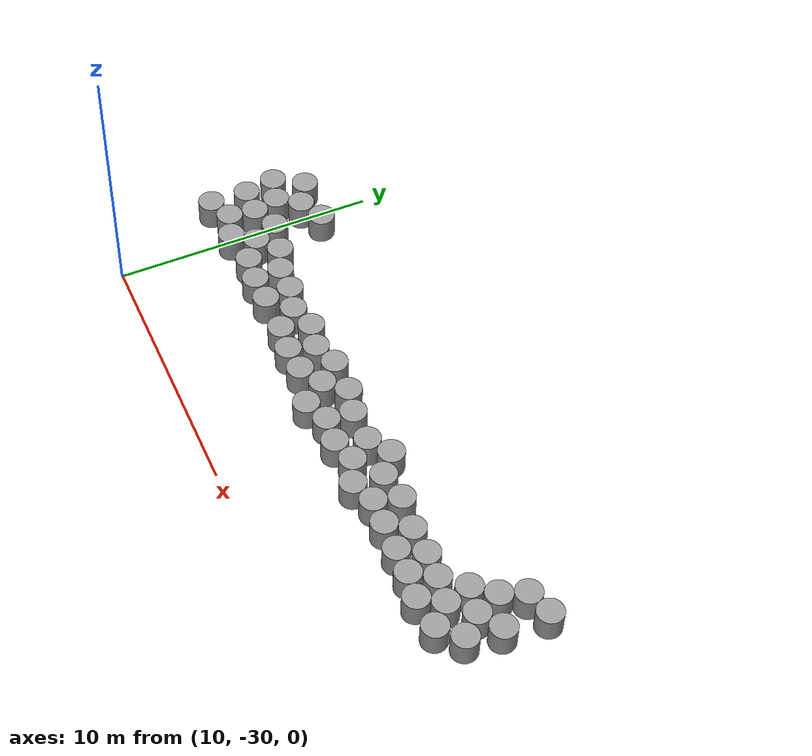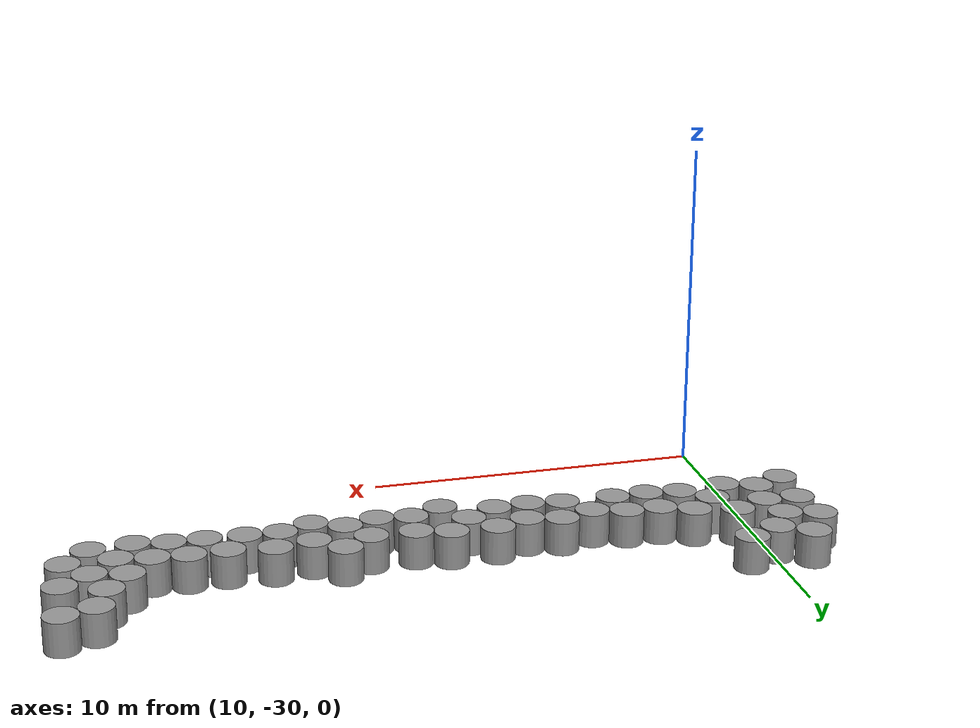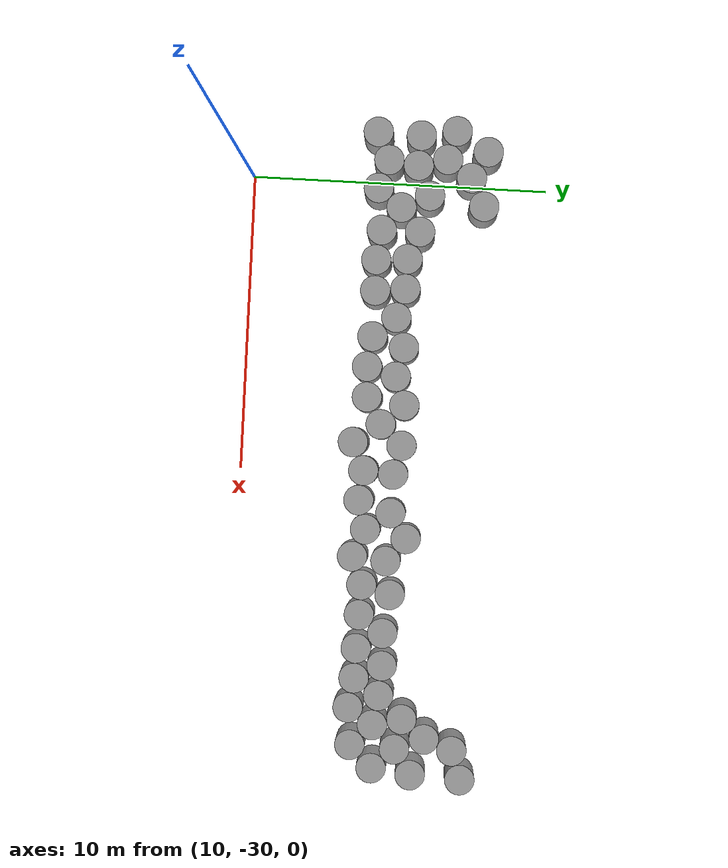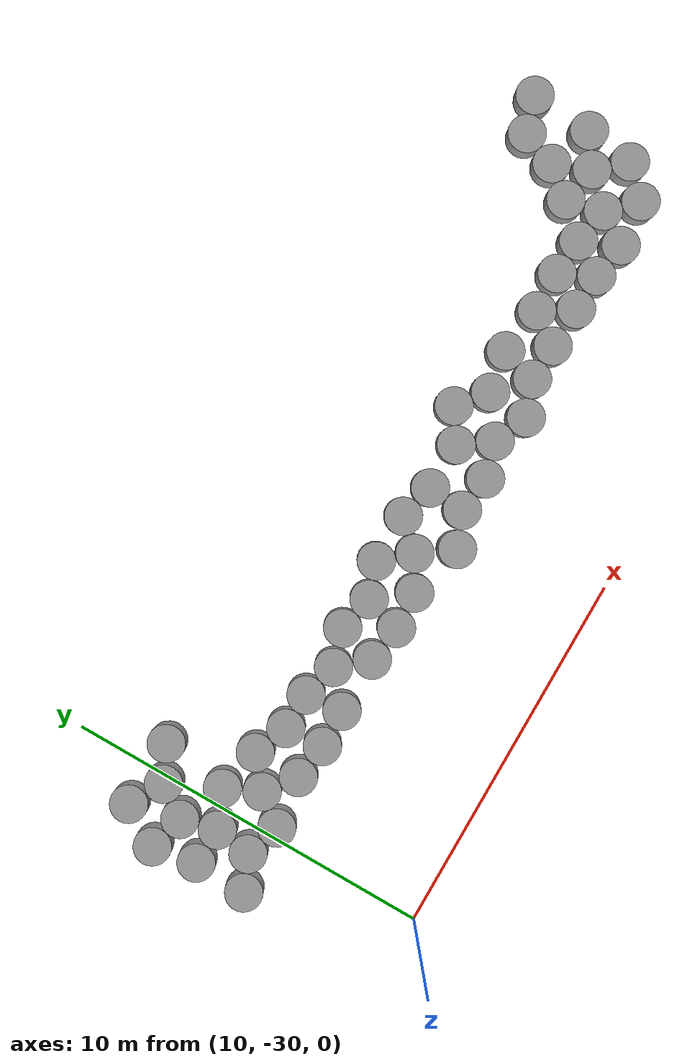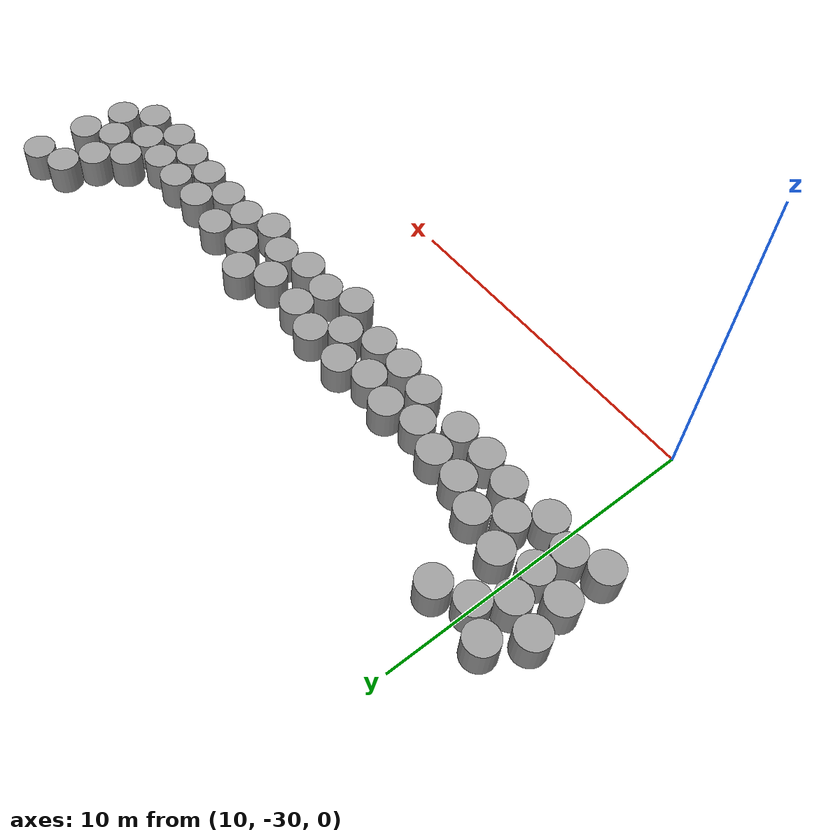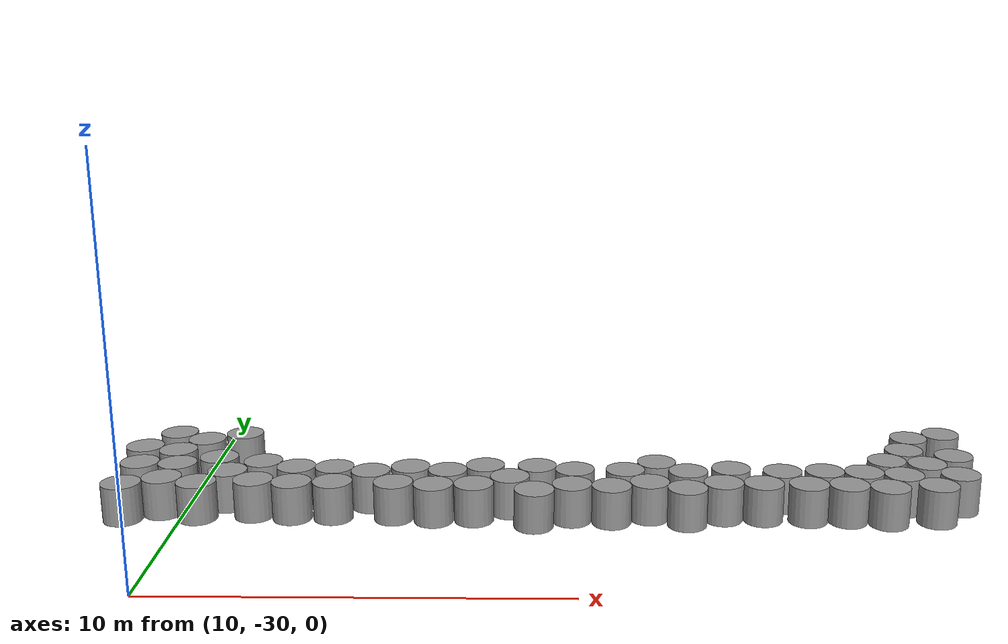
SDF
<sdf version="1.4">
 <world name="default">
  <model name="ground">
   <link name="body">
    <collision name="geom">
     <geometry><plane><normal>0 0 1</normal><size>1 1</size></plane></geometry>
     <surface><friction><ode><mu>100</mu><mu2>50</mu2></ode></friction></surface>
    </collision>
   </link>
   <static>1</static>
  </model>
  <model name="unit_cylinder">
   <pose>26.8018 -25.697 0.499995 -2e-06 1e-06 0.040756</pose>
   <link name="link">
    <inertial>
     <mass>1</mass>
     <inertia><ixx>0.145833</ixx><ixy>0</ixy><ixz>0</ixz><iyy>0.145833</iyy><iyz>0</iyz><izz>0.125</izz></inertia>
    </inertial>
    <collision name="collision">
     <geometry><cylinder><radius>0.5</radius><length>1</length></cylinder></geometry>
    </collision>
    <visual name="visual">
     <geometry><cylinder><radius>0.5</radius><length>1</length></cylinder></geometry>
     <material>
      <script><name>Gazebo/Grey</name><uri>file://media/materials/scripts/gazebo.material</uri></script>
     </material>
    </visual>
   </link>
  </model>
  <model name="unit_cylinder_clone">
   <pose>27.7903 -25.8482 0.499995 -2e-06 2e-06 0.239846</pose>
   <link name="link">
    <inertial>
     <mass>1</mass>
     <inertia><ixx>0.145833</ixx><ixy>0</ixy><ixz>0</ixz><iyy>0.145833</iyy><iyz>0</iyz><izz>0.125</izz></inertia>
    </inertial>
    <collision name="collision">
     <geometry><cylinder><radius>0.5</radius><length>1</length></cylinder></geometry>
    </collision>
    <visual name="visual">
     <geometry><cylinder><radius>0.5</radius><length>1</length></cylinder></geometry>
     <material>
      <script><name>Gazebo/Grey</name><uri>file://media/materials/scripts/gazebo.material</uri></script>
     </material>
    </visual>
   </link>
  </model>
  <model name="unit_cylinder_clone_0">
   <pose>29.0276 -25.7266 0.499998 3e-06 -3e-06 0.070741</pose>
   <link name="link">
    <inertial>
     <mass>1</mass>
     <inertia><ixx>0.145833</ixx><ixy>0</ixy><ixz>0</ixz><iyy>0.145833</iyy><iyz>0</iyz><izz>0.125</izz></inertia>
    </inertial>
    <collision name="collision">
     <geometry><cylinder><radius>0.5</radius><length>1</length></cylinder></geometry>
    </collision>
    <visual name="visual">
     <geometry><cylinder><radius>0.5</radius><length>1</length></cylinder></geometry>
     <material>
      <script><name>Gazebo/Grey</name><uri>file://media/materials/scripts/gazebo.material</uri></script>
     </material>
    </visual>
   </link>
  </model>
  <model name="unit_cylinder_clone_1">
   <pose>29.7721 -24.9783 0.499998 3e-06 -3e-06 0.079465</pose>
   <link name="link">
    <inertial>
     <mass>1</mass>
     <inertia><ixx>0.145833</ixx><ixy>0</ixy><ixz>0</ixz><iyy>0.145833</iyy><iyz>0</iyz><izz>0.125</izz></inertia>
    </inertial>
    <collision name="collision">
     <geometry><cylinder><radius>0.5</radius><length>1</length></cylinder></geometry>
    </collision>
    <visual name="visual">
     <geometry><cylinder><radius>0.5</radius><length>1</length></cylinder></geometry>
     <material>
      <script><name>Gazebo/Grey</name><uri>file://media/materials/scripts/gazebo.material</uri></script>
     </material>
    </visual>
   </link>
  </model>
  <model name="unit_cylinder_clone_2">
   <pose>29.9412 -23.6675 0.499996 -2e-06 -2e-06 -0.015943</pose>
   <link name="link">
    <inertial>
     <mass>1</mass>
     <inertia><ixx>0.145833</ixx><ixy>0</ixy><ixz>0</ixz><iyy>0.145833</iyy><iyz>0</iyz><izz>0.125</izz></inertia>
    </inertial>
    <collision name="collision">
     <geometry><cylinder><radius>0.5</radius><length>1</length></cylinder></geometry>
    </collision>
    <visual name="visual">
     <geometry><cylinder><radius>0.5</radius><length>1</length></cylinder></geometry>
     <material>
      <script><name>Gazebo/Grey</name><uri>file://media/materials/scripts/gazebo.material</uri></script>
     </material>
    </visual>
   </link>
  </model>
  <model name="unit_cylinder_clone_3">
   <pose>29.0754 -22.3193 0.499995 -3e-06 2e-06 -0.026891</pose>
   <link name="link">
    <inertial>
     <mass>1</mass>
     <inertia><ixx>0.145833</ixx><ixy>0</ixy><ixz>0</ixz><iyy>0.145833</iyy><iyz>0</iyz><izz>0.125</izz></inertia>
    </inertial>
    <collision name="collision">
     <geometry><cylinder><radius>0.5</radius><length>1</length></cylinder></geometry>
    </collision>
    <visual name="visual">
     <geometry><cylinder><radius>0.5</radius><length>1</length></cylinder></geometry>
     <material>
      <script><name>Gazebo/Grey</name><uri>file://media/materials/scripts/gazebo.material</uri></script>
     </material>
    </visual>
   </link>
  </model>
  <model name="unit_cylinder_clone_4">
   <pose>30.0254 -22.0038 0.499991 1e-06 1e-06 0.048586</pose>
   <link name="link">
    <inertial>
     <mass>1</mass>
     <inertia><ixx>0.145833</ixx><ixy>0</ixy><ixz>0</ixz><iyy>0.145833</iyy><iyz>0</iyz><izz>0.125</izz></inertia>
    </inertial>
    <collision name="collision">
     <geometry><cylinder><radius>0.5</radius><length>1</length></cylinder></geometry>
    </collision>
    <visual name="visual">
     <geometry><cylinder><radius>0.5</radius><length>1</length></cylinder></geometry>
     <material>
      <script><name>Gazebo/Grey</name><uri>file://media/materials/scripts/gazebo.material</uri></script>
     </material>
    </visual>
   </link>
  </model>
  <model name="unit_cylinder_clone_38">
   <pose>25.8021 -25.673 0.499991 1e-06 1e-06 -0.062745</pose>
   <link name="link">
    <inertial>
     <mass>1</mass>
     <inertia><ixx>0.145833</ixx><ixy>0</ixy><ixz>0</ixz><iyy>0.145833</iyy><iyz>0</iyz><izz>0.125</izz></inertia>
    </inertial>
    <collision name="collision">
     <geometry><cylinder><radius>0.5</radius><length>1</length></cylinder></geometry>
    </collision>
    <visual name="visual">
     <geometry><cylinder><radius>0.5</radius><length>1</length></cylinder></geometry>
     <material>
      <script><name>Gazebo/Grey</name><uri>file://media/materials/scripts/gazebo.material</uri></script>
     </material>
    </visual>
   </link>
  </model>
  <model name="unit_cylinder_clone_39">
   <pose>24.6782 -25.6293 0.5 -1e-06 -1e-06 0.085528</pose>
   <link name="link">
    <inertial>
     <mass>1</mass>
     <inertia><ixx>0.145833</ixx><ixy>0</ixy><ixz>0</ixz><iyy>0.145833</iyy><iyz>0</iyz><izz>0.125</izz></inertia>
    </inertial>
    <collision name="collision">
     <geometry><cylinder><radius>0.5</radius><length>1</length></cylinder></geometry>
    </collision>
    <visual name="visual">
     <geometry><cylinder><radius>0.5</radius><length>1</length></cylinder></geometry>
     <material>
      <script><name>Gazebo/Grey</name><uri>file://media/materials/scripts/gazebo.material</uri></script>
     </material>
    </visual>
   </link>
  </model>
  <model name="unit_cylinder_clone_40">
   <pose>23.677 -25.5955 0.499992 -3e-06 -2e-06 0.112481</pose>
   <link name="link">
    <inertial>
     <mass>1</mass>
     <inertia><ixx>0.145833</ixx><ixy>0</ixy><ixz>0</ixz><iyy>0.145833</iyy><iyz>0</iyz><izz>0.125</izz></inertia>
    </inertial>
    <collision name="collision">
     <geometry><cylinder><radius>0.5</radius><length>1</length></cylinder></geometry>
    </collision>
    <visual name="visual">
     <geometry><cylinder><radius>0.5</radius><length>1</length></cylinder></geometry>
     <material>
      <script><name>Gazebo/Grey</name><uri>file://media/materials/scripts/gazebo.material</uri></script>
     </material>
    </visual>
   </link>
  </model>
  <model name="unit_cylinder_clone_41">
   <pose>21.8206 -25.5633 0.499996 -2e-06 -2e-06 -0.178196</pose>
   <link name="link">
    <inertial>
     <mass>1</mass>
     <inertia><ixx>0.145833</ixx><ixy>0</ixy><ixz>0</ixz><iyy>0.145833</iyy><iyz>0</iyz><izz>0.125</izz></inertia>
    </inertial>
    <collision name="collision">
     <geometry><cylinder><radius>0.5</radius><length>1</length></cylinder></geometry>
    </collision>
    <visual name="visual">
     <geometry><cylinder><radius>0.5</radius><length>1</length></cylinder></geometry>
     <material>
      <script><name>Gazebo/Grey</name><uri>file://media/materials/scripts/gazebo.material</uri></script>
     </material>
    </visual>
   </link>
  </model>
  <model name="unit_cylinder_clone_42">
   <pose>20.8579 -25.834 0.5 0 0 -0.299492</pose>
   <link name="link">
    <inertial>
     <mass>1</mass>
     <inertia><ixx>0.145833</ixx><ixy>0</ixy><ixz>0</ixz><iyy>0.145833</iyy><iyz>0</iyz><izz>0.125</izz></inertia>
    </inertial>
    <collision name="collision">
     <geometry><cylinder><radius>0.5</radius><length>1</length></cylinder></geometry>
    </collision>
    <visual name="visual">
     <geometry><cylinder><radius>0.5</radius><length>1</length></cylinder></geometry>
     <material>
      <script><name>Gazebo/Grey</name><uri>file://media/materials/scripts/gazebo.material</uri></script>
     </material>
    </visual>
   </link>
  </model>
  <model name="unit_cylinder_clone_43">
   <pose>18.9197 -26.1093 0.51184 0.009366 -0.022071 2.09487</pose>
   <link name="link">
    <inertial>
     <mass>1</mass>
     <inertia><ixx>0.145833</ixx><ixy>0</ixy><ixz>0</ixz><iyy>0.145833</iyy><iyz>0</iyz><izz>0.125</izz></inertia>
    </inertial>
    <collision name="collision">
     <geometry><cylinder><radius>0.5</radius><length>1</length></cylinder></geometry>
    </collision>
    <visual name="visual">
     <geometry><cylinder><radius>0.5</radius><length>1</length></cylinder></geometry>
     <material>
      <script><name>Gazebo/Grey</name><uri>file://media/materials/scripts/gazebo.material</uri></script>
     </material>
    </visual>
   </link>
  </model>
  <model name="unit_cylinder_clone_44">
   <pose>17.4055 -25.7255 0.499998 4e-06 4e-06 0.056821</pose>
   <link name="link">
    <inertial>
     <mass>1</mass>
     <inertia><ixx>0.145833</ixx><ixy>0</ixy><ixz>0</ixz><iyy>0.145833</iyy><iyz>0</iyz><izz>0.125</izz></inertia>
    </inertial>
    <collision name="collision">
     <geometry><cylinder><radius>0.5</radius><length>1</length></cylinder></geometry>
    </collision>
    <visual name="visual">
     <geometry><cylinder><radius>0.5</radius><length>1</length></cylinder></geometry>
     <material>
      <script><name>Gazebo/Grey</name><uri>file://media/materials/scripts/gazebo.material</uri></script>
     </material>
    </visual>
   </link>
  </model>
  <model name="unit_cylinder_clone_45">
   <pose>15.3758 -25.6431 0.5 0 0 -0.057301</pose>
   <link name="link">
    <inertial>
     <mass>1</mass>
     <inertia><ixx>0.145833</ixx><ixy>0</ixy><ixz>0</ixz><iyy>0.145833</iyy><iyz>0</iyz><izz>0.125</izz></inertia>
    </inertial>
    <collision name="collision">
     <geometry><cylinder><radius>0.5</radius><length>1</length></cylinder></geometry>
    </collision>
    <visual name="visual">
     <geometry><cylinder><radius>0.5</radius><length>1</length></cylinder></geometry>
     <material>
      <script><name>Gazebo/Grey</name><uri>file://media/materials/scripts/gazebo.material</uri></script>
     </material>
    </visual>
   </link>
  </model>
  <model name="unit_cylinder_clone_46">
   <pose>13.8434 -25.6271 0.499994 2e-06 2e-06 0.045063</pose>
   <link name="link">
    <inertial>
     <mass>1</mass>
     <inertia><ixx>0.145833</ixx><ixy>0</ixy><ixz>0</ixz><iyy>0.145833</iyy><iyz>0</iyz><izz>0.125</izz></inertia>
    </inertial>
    <collision name="collision">
     <geometry><cylinder><radius>0.5</radius><length>1</length></cylinder></geometry>
    </collision>
    <visual name="visual">
     <geometry><cylinder><radius>0.5</radius><length>1</length></cylinder></geometry>
     <material>
      <script><name>Gazebo/Grey</name><uri>file://media/materials/scripts/gazebo.material</uri></script>
     </material>
    </visual>
   </link>
  </model>
  <model name="unit_cylinder_clone_47">
   <pose>11.8144 -25.5099 0.5 0 0 -0.049116</pose>
   <link name="link">
    <inertial>
     <mass>1</mass>
     <inertia><ixx>0.145833</ixx><ixy>0</ixy><ixz>0</ixz><iyy>0.145833</iyy><iyz>0</iyz><izz>0.125</izz></inertia>
    </inertial>
    <collision name="collision">
     <geometry><cylinder><radius>0.5</radius><length>1</length></cylinder></geometry>
    </collision>
    <visual name="visual">
     <geometry><cylinder><radius>0.5</radius><length>1</length></cylinder></geometry>
     <material>
      <script><name>Gazebo/Grey</name><uri>file://media/materials/scripts/gazebo.material</uri></script>
     </material>
    </visual>
   </link>
  </model>
  <model name="unit_cylinder_clone_49">
   <pose>8.60095 -24.3339 0.499999 2e-06 2e-06 0.106613</pose>
   <link name="link">
    <inertial>
     <mass>1</mass>
     <inertia><ixx>0.145833</ixx><ixy>0</ixy><ixz>0</ixz><iyy>0.145833</iyy><iyz>0</iyz><izz>0.125</izz></inertia>
    </inertial>
    <collision name="collision">
     <geometry><cylinder><radius>0.5</radius><length>1</length></cylinder></geometry>
    </collision>
    <visual name="visual">
     <geometry><cylinder><radius>0.5</radius><length>1</length></cylinder></geometry>
     <material>
      <script><name>Gazebo/Grey</name><uri>file://media/materials/scripts/gazebo.material</uri></script>
     </material>
    </visual>
   </link>
  </model>
  <model name="unit_cylinder_clone_50">
   <pose>8.39643 -23.1493 0.499999 2e-06 2e-06 -0.231083</pose>
   <link name="link">
    <inertial>
     <mass>1</mass>
     <inertia><ixx>0.145833</ixx><ixy>0</ixy><ixz>0</ixz><iyy>0.145833</iyy><iyz>0</iyz><izz>0.125</izz></inertia>
    </inertial>
    <collision name="collision">
     <geometry><cylinder><radius>0.5</radius><length>1</length></cylinder></geometry>
    </collision>
    <visual name="visual">
     <geometry><cylinder><radius>0.5</radius><length>1</length></cylinder></geometry>
     <material>
      <script><name>Gazebo/Grey</name><uri>file://media/materials/scripts/gazebo.material</uri></script>
     </material>
    </visual>
   </link>
  </model>
  <model name="unit_cylinder_clone_51">
   <pose>9.03981 -22.0785 0.499992 -3e-06 -2e-06 0.005674</pose>
   <link name="link">
    <inertial>
     <mass>1</mass>
     <inertia><ixx>0.145833</ixx><ixy>0</ixy><ixz>0</ixz><iyy>0.145833</iyy><iyz>0</iyz><izz>0.125</izz></inertia>
    </inertial>
    <collision name="collision">
     <geometry><cylinder><radius>0.5</radius><length>1</length></cylinder></geometry>
    </collision>
    <visual name="visual">
     <geometry><cylinder><radius>0.5</radius><length>1</length></cylinder></geometry>
     <material>
      <script><name>Gazebo/Grey</name><uri>file://media/materials/scripts/gazebo.material</uri></script>
     </material>
    </visual>
   </link>
  </model>
  <model name="unit_cylinder_3">
   <pose>8.54754 -25.7755 0.499996 -2e-06 -1e-06 0.231139</pose>
   <link name="link">
    <inertial>
     <mass>1</mass>
     <inertia><ixx>0.145833</ixx><ixy>0</ixy><ixz>0</ixz><iyy>0.145833</iyy><iyz>0</iyz><izz>0.125</izz></inertia>
    </inertial>
    <collision name="collision">
     <geometry><cylinder><radius>0.5</radius><length>1</length></cylinder></geometry>
    </collision>
    <visual name="visual">
     <geometry><cylinder><radius>0.5</radius><length>1</length></cylinder></geometry>
     <material>
      <script><name>Gazebo/Grey</name><uri>file://media/materials/scripts/gazebo.material</uri></script>
     </material>
    </visual>
   </link>
  </model>
  <model name="unit_cylinder_4_clone_16">
   <pose>28.7276 -23.2569 0.499991 -2e-06 -3e-06 -0.242168</pose>
   <link name="link">
    <inertial>
     <mass>1</mass>
     <inertia><ixx>0.145833</ixx><ixy>0</ixy><ixz>0</ixz><iyy>0.145833</iyy><iyz>0</iyz><izz>0.125</izz></inertia>
    </inertial>
    <collision name="collision">
     <geometry><cylinder><radius>0.5</radius><length>1</length></cylinder></geometry>
    </collision>
    <visual name="visual">
     <geometry><cylinder><radius>0.5</radius><length>1</length></cylinder></geometry>
     <material>
      <script><name>Gazebo/Grey</name><uri>file://media/materials/scripts/gazebo.material</uri></script>
     </material>
    </visual>
   </link>
  </model>
  <model name="unit_cylinder_4_clone_19">
   <pose>29.1089 -24.2298 0.499995 -3e-06 1e-06 -0.150241</pose>
   <link name="link">
    <inertial>
     <mass>1</mass>
     <inertia><ixx>0.145833</ixx><ixy>0</ixy><ixz>0</ixz><iyy>0.145833</iyy><iyz>0</iyz><izz>0.125</izz></inertia>
    </inertial>
    <collision name="collision">
     <geometry><cylinder><radius>0.5</radius><length>1</length></cylinder></geometry>
    </collision>
    <visual name="visual">
     <geometry><cylinder><radius>0.5</radius><length>1</length></cylinder></geometry>
     <material>
      <script><name>Gazebo/Grey</name><uri>file://media/materials/scripts/gazebo.material</uri></script>
     </material>
    </visual>
   </link>
  </model>
  <model name="unit_cylinder_4_clone_20">
   <pose>28.3326 -25.0076 0.499998 3e-06 -2e-06 0.104418</pose>
   <link name="link">
    <inertial>
     <mass>1</mass>
     <inertia><ixx>0.145833</ixx><ixy>0</ixy><ixz>0</ixz><iyy>0.145833</iyy><iyz>0</iyz><izz>0.125</izz></inertia>
    </inertial>
    <collision name="collision">
     <geometry><cylinder><radius>0.5</radius><length>1</length></cylinder></geometry>
    </collision>
    <visual name="visual">
     <geometry><cylinder><radius>0.5</radius><length>1</length></cylinder></geometry>
     <material>
      <script><name>Gazebo/Grey</name><uri>file://media/materials/scripts/gazebo.material</uri></script>
     </material>
    </visual>
   </link>
  </model>
  <model name="unit_cylinder_4_clone_21">
   <pose>27.3453 -24.8484 0.499999 3e-06 2e-06 0.086129</pose>
   <link name="link">
    <inertial>
     <mass>1</mass>
     <inertia><ixx>0.145833</ixx><ixy>0</ixy><ixz>0</ixz><iyy>0.145833</iyy><iyz>0</iyz><izz>0.125</izz></inertia>
    </inertial>
    <collision name="collision">
     <geometry><cylinder><radius>0.5</radius><length>1</length></cylinder></geometry>
    </collision>
    <visual name="visual">
     <geometry><cylinder><radius>0.5</radius><length>1</length></cylinder></geometry>
     <material>
      <script><name>Gazebo/Grey</name><uri>file://media/materials/scripts/gazebo.material</uri></script>
     </material>
    </visual>
   </link>
  </model>
  <model name="unit_cylinder_4_clone_22">
   <pose>26.3473 -24.7854 0.499996 -2e-06 -2e-06 -0.007893</pose>
   <link name="link">
    <inertial>
     <mass>1</mass>
     <inertia><ixx>0.145833</ixx><ixy>0</ixy><ixz>0</ixz><iyy>0.145833</iyy><iyz>0</iyz><izz>0.125</izz></inertia>
    </inertial>
    <collision name="collision">
     <geometry><cylinder><radius>0.5</radius><length>1</length></cylinder></geometry>
    </collision>
    <visual name="visual">
     <geometry><cylinder><radius>0.5</radius><length>1</length></cylinder></geometry>
     <material>
      <script><name>Gazebo/Grey</name><uri>file://media/materials/scripts/gazebo.material</uri></script>
     </material>
    </visual>
   </link>
  </model>
  <model name="unit_cylinder_4_clone_23">
   <pose>25.2601 -24.8158 0.499991 1e-06 1e-06 0.033098</pose>
   <link name="link">
    <inertial>
     <mass>1</mass>
     <inertia><ixx>0.145833</ixx><ixy>0</ixy><ixz>0</ixz><iyy>0.145833</iyy><iyz>0</iyz><izz>0.125</izz></inertia>
    </inertial>
    <collision name="collision">
     <geometry><cylinder><radius>0.5</radius><length>1</length></cylinder></geometry>
    </collision>
    <visual name="visual">
     <geometry><cylinder><radius>0.5</radius><length>1</length></cylinder></geometry>
     <material>
      <script><name>Gazebo/Grey</name><uri>file://media/materials/scripts/gazebo.material</uri></script>
     </material>
    </visual>
   </link>
  </model>
  <model name="unit_cylinder_4_clone_24">
   <pose>23.9658 -24.6381 0.499999 3e-06 3e-06 -0.081614</pose>
   <link name="link">
    <inertial>
     <mass>1</mass>
     <inertia><ixx>0.145833</ixx><ixy>0</ixy><ixz>0</ixz><iyy>0.145833</iyy><iyz>0</iyz><izz>0.125</izz></inertia>
    </inertial>
    <collision name="collision">
     <geometry><cylinder><radius>0.5</radius><length>1</length></cylinder></geometry>
    </collision>
    <visual name="visual">
     <geometry><cylinder><radius>0.5</radius><length>1</length></cylinder></geometry>
     <material>
      <script><name>Gazebo/Grey</name><uri>file://media/materials/scripts/gazebo.material</uri></script>
     </material>
    </visual>
   </link>
  </model>
  <model name="unit_cylinder_4_clone_25">
   <pose>22.8486 -24.8326 0.5 0 0 -0.027759</pose>
   <link name="link">
    <inertial>
     <mass>1</mass>
     <inertia><ixx>0.145833</ixx><ixy>0</ixy><ixz>0</ixz><iyy>0.145833</iyy><iyz>0</iyz><izz>0.125</izz></inertia>
    </inertial>
    <collision name="collision">
     <geometry><cylinder><radius>0.5</radius><length>1</length></cylinder></geometry>
    </collision>
    <visual name="visual">
     <geometry><cylinder><radius>0.5</radius><length>1</length></cylinder></geometry>
     <material>
      <script><name>Gazebo/Grey</name><uri>file://media/materials/scripts/gazebo.material</uri></script>
     </material>
    </visual>
   </link>
  </model>
  <model name="unit_cylinder_4_clone_26">
   <pose>21.2389 -24.7455 0.5 0 -0 0.065224</pose>
   <link name="link">
    <inertial>
     <mass>1</mass>
     <inertia><ixx>0.145833</ixx><ixy>0</ixy><ixz>0</ixz><iyy>0.145833</iyy><iyz>0</iyz><izz>0.125</izz></inertia>
    </inertial>
    <collision name="collision">
     <geometry><cylinder><radius>0.5</radius><length>1</length></cylinder></geometry>
    </collision>
    <visual name="visual">
     <geometry><cylinder><radius>0.5</radius><length>1</length></cylinder></geometry>
     <material>
      <script><name>Gazebo/Grey</name><uri>file://media/materials/scripts/gazebo.material</uri></script>
     </material>
    </visual>
   </link>
  </model>
  <model name="unit_cylinder_4_clone_27">
   <pose>19.9491 -24.7258 0.5 -1e-06 -0 0.690069</pose>
   <link name="link">
    <inertial>
     <mass>1</mass>
     <inertia><ixx>0.145833</ixx><ixy>0</ixy><ixz>0</ixz><iyy>0.145833</iyy><iyz>0</iyz><izz>0.125</izz></inertia>
    </inertial>
    <collision name="collision">
     <geometry><cylinder><radius>0.5</radius><length>1</length></cylinder></geometry>
    </collision>
    <visual name="visual">
     <geometry><cylinder><radius>0.5</radius><length>1</length></cylinder></geometry>
     <material>
      <script><name>Gazebo/Grey</name><uri>file://media/materials/scripts/gazebo.material</uri></script>
     </material>
    </visual>
   </link>
  </model>
  <model name="unit_cylinder_4_clone_28">
   <pose>18.2922 -25.2231 0.499995 -2e-06 2e-06 0.066733</pose>
   <link name="link">
    <inertial>
     <mass>1</mass>
     <inertia><ixx>0.145833</ixx><ixy>0</ixy><ixz>0</ixz><iyy>0.145833</iyy><iyz>0</iyz><izz>0.125</izz></inertia>
    </inertial>
    <collision name="collision">
     <geometry><cylinder><radius>0.5</radius><length>1</length></cylinder></geometry>
    </collision>
    <visual name="visual">
     <geometry><cylinder><radius>0.5</radius><length>1</length></cylinder></geometry>
     <material>
      <script><name>Gazebo/Grey</name><uri>file://media/materials/scripts/gazebo.material</uri></script>
     </material>
    </visual>
   </link>
  </model>
  <model name="unit_cylinder_4_clone_29">
   <pose>16.6798 -24.7964 0.499991 1e-06 1e-06 0.119998</pose>
   <link name="link">
    <inertial>
     <mass>1</mass>
     <inertia><ixx>0.145833</ixx><ixy>0</ixy><ixz>0</ixz><iyy>0.145833</iyy><iyz>0</iyz><izz>0.125</izz></inertia>
    </inertial>
    <collision name="collision">
     <geometry><cylinder><radius>0.5</radius><length>1</length></cylinder></geometry>
    </collision>
    <visual name="visual">
     <geometry><cylinder><radius>0.5</radius><length>1</length></cylinder></geometry>
     <material>
      <script><name>Gazebo/Grey</name><uri>file://media/materials/scripts/gazebo.material</uri></script>
     </material>
    </visual>
   </link>
  </model>
  <model name="unit_cylinder_4_clone_30">
   <pose>15.7022 -24.5766 0.5 -1e-06 -1e-06 0.079118</pose>
   <link name="link">
    <inertial>
     <mass>1</mass>
     <inertia><ixx>0.145833</ixx><ixy>0</ixy><ixz>0</ixz><iyy>0.145833</iyy><iyz>0</iyz><izz>0.125</izz></inertia>
    </inertial>
    <collision name="collision">
     <geometry><cylinder><radius>0.5</radius><length>1</length></cylinder></geometry>
    </collision>
    <visual name="visual">
     <geometry><cylinder><radius>0.5</radius><length>1</length></cylinder></geometry>
     <material>
      <script><name>Gazebo/Grey</name><uri>file://media/materials/scripts/gazebo.material</uri></script>
     </material>
    </visual>
   </link>
  </model>
  <model name="unit_cylinder_4_clone_31">
   <pose>14.7095 -24.8777 0.49999 0 0 -0.061017</pose>
   <link name="link">
    <inertial>
     <mass>1</mass>
     <inertia><ixx>0.145833</ixx><ixy>0</ixy><ixz>0</ixz><iyy>0.145833</iyy><iyz>0</iyz><izz>0.125</izz></inertia>
    </inertial>
    <collision name="collision">
     <geometry><cylinder><radius>0.5</radius><length>1</length></cylinder></geometry>
    </collision>
    <visual name="visual">
     <geometry><cylinder><radius>0.5</radius><length>1</length></cylinder></geometry>
     <material>
      <script><name>Gazebo/Grey</name><uri>file://media/materials/scripts/gazebo.material</uri></script>
     </material>
    </visual>
   </link>
  </model>
  <model name="unit_cylinder_4_clone_32">
   <pose>12.7432 -24.5992 0.499991 -2e-06 -2e-06 -0.094415</pose>
   <link name="link">
    <inertial>
     <mass>1</mass>
     <inertia><ixx>0.145833</ixx><ixy>0</ixy><ixz>0</ixz><iyy>0.145833</iyy><iyz>0</iyz><izz>0.125</izz></inertia>
    </inertial>
    <collision name="collision">
     <geometry><cylinder><radius>0.5</radius><length>1</length></cylinder></geometry>
    </collision>
    <visual name="visual">
     <geometry><cylinder><radius>0.5</radius><length>1</length></cylinder></geometry>
     <material>
      <script><name>Gazebo/Grey</name><uri>file://media/materials/scripts/gazebo.material</uri></script>
     </material>
    </visual>
   </link>
  </model>
  <model name="unit_cylinder_4_clone_33">
   <pose>13.743 -24.621 0.499992 -3e-06 2e-06 -0.008114</pose>
   <link name="link">
    <inertial>
     <mass>1</mass>
     <inertia><ixx>0.145833</ixx><ixy>0</ixy><ixz>0</ixz><iyy>0.145833</iyy><iyz>0</iyz><izz>0.125</izz></inertia>
    </inertial>
    <collision name="collision">
     <geometry><cylinder><radius>0.5</radius><length>1</length></cylinder></geometry>
    </collision>
    <visual name="visual">
     <geometry><cylinder><radius>0.5</radius><length>1</length></cylinder></geometry>
     <material>
      <script><name>Gazebo/Grey</name><uri>file://media/materials/scripts/gazebo.material</uri></script>
     </material>
    </visual>
   </link>
  </model>
  <model name="unit_cylinder_4_clone_34">
   <pose>11.0293 -24.8886 0.499999 3e-06 1e-06 0.46284</pose>
   <link name="link">
    <inertial>
     <mass>1</mass>
     <inertia><ixx>0.145833</ixx><ixy>0</ixy><ixz>0</ixz><iyy>0.145833</iyy><iyz>0</iyz><izz>0.125</izz></inertia>
    </inertial>
    <collision name="collision">
     <geometry><cylinder><radius>0.5</radius><length>1</length></cylinder></geometry>
    </collision>
    <visual name="visual">
     <geometry><cylinder><radius>0.5</radius><length>1</length></cylinder></geometry>
     <material>
      <script><name>Gazebo/Grey</name><uri>file://media/materials/scripts/gazebo.material</uri></script>
     </material>
    </visual>
   </link>
  </model>
  <model name="unit_cylinder_4_clone_35">
   <pose>9.46355 -25.3743 0.499979 1e-06 3e-06 -0.503153</pose>
   <link name="link">
    <inertial>
     <mass>1</mass>
     <inertia><ixx>0.145833</ixx><ixy>0</ixy><ixz>0</ixz><iyy>0.145833</iyy><iyz>0</iyz><izz>0.125</izz></inertia>
    </inertial>
    <collision name="collision">
     <geometry><cylinder><radius>0.5</radius><length>1</length></cylinder></geometry>
    </collision>
    <visual name="visual">
     <geometry><cylinder><radius>0.5</radius><length>1</length></cylinder></geometry>
     <material>
      <script><name>Gazebo/Grey</name><uri>file://media/materials/scripts/gazebo.material</uri></script>
     </material>
    </visual>
   </link>
  </model>
  <model name="unit_cylinder_4_clone_36">
   <pose>22.076 -24.1977 0.499992 -3e-06 -3e-06 -0.002622</pose>
   <link name="link">
    <inertial>
     <mass>1</mass>
     <inertia><ixx>0.145833</ixx><ixy>0</ixy><ixz>0</ixz><iyy>0.145833</iyy><iyz>0</iyz><izz>0.125</izz></inertia>
    </inertial>
    <collision name="collision">
     <geometry><cylinder><radius>0.5</radius><length>1</length></cylinder></geometry>
    </collision>
    <visual name="visual">
     <geometry><cylinder><radius>0.5</radius><length>1</length></cylinder></geometry>
     <material>
      <script><name>Gazebo/Grey</name><uri>file://media/materials/scripts/gazebo.material</uri></script>
     </material>
    </visual>
   </link>
  </model>
  <model name="unit_cylinder_4_clone_38">
   <pose>18.9728 -24.4903 0.499991 -1e-06 -2e-06 -0.203358</pose>
   <link name="link">
    <inertial>
     <mass>1</mass>
     <inertia><ixx>0.145833</ixx><ixy>0</ixy><ixz>0</ixz><iyy>0.145833</iyy><iyz>0</iyz><izz>0.125</izz></inertia>
    </inertial>
    <collision name="collision">
     <geometry><cylinder><radius>0.5</radius><length>1</length></cylinder></geometry>
    </collision>
    <visual name="visual">
     <geometry><cylinder><radius>0.5</radius><length>1</length></cylinder></geometry>
     <material>
      <script><name>Gazebo/Grey</name><uri>file://media/materials/scripts/gazebo.material</uri></script>
     </material>
    </visual>
   </link>
  </model>
  <model name="unit_cylinder_4_clone_39">
   <pose>17.6268 -24.4643 0.499992 -3e-06 -3e-06 -0.014138</pose>
   <link name="link">
    <inertial>
     <mass>1</mass>
     <inertia><ixx>0.145833</ixx><ixy>0</ixy><ixz>0</ixz><iyy>0.145833</iyy><iyz>0</iyz><izz>0.125</izz></inertia>
    </inertial>
    <collision name="collision">
     <geometry><cylinder><radius>0.5</radius><length>1</length></cylinder></geometry>
    </collision>
    <visual name="visual">
     <geometry><cylinder><radius>0.5</radius><length>1</length></cylinder></geometry>
     <material>
      <script><name>Gazebo/Grey</name><uri>file://media/materials/scripts/gazebo.material</uri></script>
     </material>
    </visual>
   </link>
  </model>
  <model name="unit_cylinder_4_clone_40">
   <pose>9.93112 -22.5913 0.499992 -2e-06 -4e-06 -0.29361</pose>
   <link name="link">
    <inertial>
     <mass>1</mass>
     <inertia><ixx>0.145833</ixx><ixy>0</ixy><ixz>0</ixz><iyy>0.145833</iyy><iyz>0</iyz><izz>0.125</izz></inertia>
    </inertial>
    <collision name="collision">
     <geometry><cylinder><radius>0.5</radius><length>1</length></cylinder></geometry>
    </collision>
    <visual name="visual">
     <geometry><cylinder><radius>0.5</radius><length>1</length></cylinder></geometry>
     <material>
      <script><name>Gazebo/Grey</name><uri>file://media/materials/scripts/gazebo.material</uri></script>
     </material>
    </visual>
   </link>
  </model>
  <model name="unit_cylinder_4_clone_56">
   <pose>9.361 -23.4131 0.499999 4e-06 2e-06 0.283046</pose>
   <link name="link">
    <inertial>
     <mass>1</mass>
     <inertia><ixx>0.145833</ixx><ixy>0</ixy><ixz>0</ixz><iyy>0.145833</iyy><iyz>0</iyz><izz>0.125</izz></inertia>
    </inertial>
    <collision name="collision">
     <geometry><cylinder><radius>0.5</radius><length>1</length></cylinder></geometry>
    </collision>
    <visual name="visual">
     <geometry><cylinder><radius>0.5</radius><length>1</length></cylinder></geometry>
     <material>
      <script><name>Gazebo/Grey</name><uri>file://media/materials/scripts/gazebo.material</uri></script>
     </material>
    </visual>
   </link>
  </model>
  <model name="unit_cylinder_4_clone_57">
   <pose>10.5917 -23.9586 0.504674 0.003792 0.008596 0.134638</pose>
   <link name="link">
    <inertial>
     <mass>1</mass>
     <inertia><ixx>0.145833</ixx><ixy>0</ixy><ixz>0</ixz><iyy>0.145833</iyy><iyz>0</iyz><izz>0.125</izz></inertia>
    </inertial>
    <collision name="collision">
     <geometry><cylinder><radius>0.5</radius><length>1</length></cylinder></geometry>
    </collision>
    <visual name="visual">
     <geometry><cylinder><radius>0.5</radius><length>1</length></cylinder></geometry>
     <material>
      <script><name>Gazebo/Grey</name><uri>file://media/materials/scripts/gazebo.material</uri></script>
     </material>
    </visual>
   </link>
  </model>
  <model name="unit_cylinder_4_clone_58">
   <pose>28.0996 -24.0352 0.499992 -3e-06 -3e-06 -0.01777</pose>
   <link name="link">
    <inertial>
     <mass>1</mass>
     <inertia><ixx>0.145833</ixx><ixy>0</ixy><ixz>0</ixz><iyy>0.145833</iyy><iyz>0</iyz><izz>0.125</izz></inertia>
    </inertial>
    <collision name="collision">
     <geometry><cylinder><radius>0.5</radius><length>1</length></cylinder></geometry>
    </collision>
    <visual name="visual">
     <geometry><cylinder><radius>0.5</radius><length>1</length></cylinder></geometry>
     <material>
      <script><name>Gazebo/Grey</name><uri>file://media/materials/scripts/gazebo.material</uri></script>
     </material>
    </visual>
   </link>
  </model>
  <model name="unit_cylinder_4_clone_77">
   <pose>11.8123 -24.2318 0.5 -1e-06 -1e-06 -0.097926</pose>
   <link name="link">
    <inertial>
     <mass>1</mass>
     <inertia><ixx>0.145833</ixx><ixy>0</ixy><ixz>0</ixz><iyy>0.145833</iyy><iyz>0</iyz><izz>0.125</izz></inertia>
    </inertial>
    <collision name="collision">
     <geometry><cylinder><radius>0.5</radius><length>1</length></cylinder></geometry>
    </collision>
    <visual name="visual">
     <geometry><cylinder><radius>0.5</radius><length>1</length></cylinder></geometry>
     <material>
      <script><name>Gazebo/Grey</name><uri>file://media/materials/scripts/gazebo.material</uri></script>
     </material>
    </visual>
   </link>
  </model>
  <model name="unit_cylinder_4_clone_78">
   <pose>12.8108 -25.6436 0.5 0 0 -0.038277</pose>
   <link name="link">
    <inertial>
     <mass>1</mass>
     <inertia><ixx>0.145833</ixx><ixy>0</ixy><ixz>0</ixz><iyy>0.145833</iyy><iyz>0</iyz><izz>0.125</izz></inertia>
    </inertial>
    <collision name="collision">
     <geometry><cylinder><radius>0.5</radius><length>1</length></cylinder></geometry>
    </collision>
    <visual name="visual">
     <geometry><cylinder><radius>0.5</radius><length>1</length></cylinder></geometry>
     <material>
      <script><name>Gazebo/Grey</name><uri>file://media/materials/scripts/gazebo.material</uri></script>
     </material>
    </visual>
   </link>
  </model>
  <model name="unit_cylinder_4_clone_79">
   <pose>16.3913 -25.7719 0.501513 0.002379 -0.001897 -0.339138</pose>
   <link name="link">
    <inertial>
     <mass>1</mass>
     <inertia><ixx>0.145833</ixx><ixy>0</ixy><ixz>0</ixz><iyy>0.145833</iyy><iyz>0</iyz><izz>0.125</izz></inertia>
    </inertial>
    <collision name="collision">
     <geometry><cylinder><radius>0.5</radius><length>1</length></cylinder></geometry>
    </collision>
    <visual name="visual">
     <geometry><cylinder><radius>0.5</radius><length>1</length></cylinder></geometry>
     <material>
      <script><name>Gazebo/Grey</name><uri>file://media/materials/scripts/gazebo.material</uri></script>
     </material>
    </visual>
   </link>
  </model>
  <model name="unit_cylinder_4_clone_80">
   <pose>19.8637 -25.7225 0.499999 3e-06 2e-06 0.231171</pose>
   <link name="link">
    <inertial>
     <mass>1</mass>
     <inertia><ixx>0.145833</ixx><ixy>0</ixy><ixz>0</ixz><iyy>0.145833</iyy><iyz>0</iyz><izz>0.125</izz></inertia>
    </inertial>
    <collision name="collision">
     <geometry><cylinder><radius>0.5</radius><length>1</length></cylinder></geometry>
    </collision>
    <visual name="visual">
     <geometry><cylinder><radius>0.5</radius><length>1</length></cylinder></geometry>
     <material>
      <script><name>Gazebo/Grey</name><uri>file://media/materials/scripts/gazebo.material</uri></script>
     </material>
    </visual>
   </link>
  </model>
  <model name="unit_cylinder_4_clone_81">
   <pose>22.743 -25.9529 0.499991 1e-06 1e-06 0.05601</pose>
   <link name="link">
    <inertial>
     <mass>1</mass>
     <inertia><ixx>0.145833</ixx><ixy>0</ixy><ixz>0</ixz><iyy>0.145833</iyy><iyz>0</iyz><izz>0.125</izz></inertia>
    </inertial>
    <collision name="collision">
     <geometry><cylinder><radius>0.5</radius><length>1</length></cylinder></geometry>
    </collision>
    <visual name="visual">
     <geometry><cylinder><radius>0.5</radius><length>1</length></cylinder></geometry>
     <material>
      <script><name>Gazebo/Grey</name><uri>file://media/materials/scripts/gazebo.material</uri></script>
     </material>
    </visual>
   </link>
  </model>
  <model name="unit_cylinder_4_clone_82">
   <pose>10.4162 -25.6786 0.499995 -2e-06 2e-06 -0.172761</pose>
   <link name="link">
    <inertial>
     <mass>1</mass>
     <inertia><ixx>0.145833</ixx><ixy>0</ixy><ixz>0</ixz><iyy>0.145833</iyy><iyz>0</iyz><izz>0.125</izz></inertia>
    </inertial>
    <collision name="collision">
     <geometry><cylinder><radius>0.5</radius><length>1</length></cylinder></geometry>
    </collision>
    <visual name="visual">
     <geometry><cylinder><radius>0.5</radius><length>1</length></cylinder></geometry>
     <material>
      <script><name>Gazebo/Grey</name><uri>file://media/materials/scripts/gazebo.material</uri></script>
     </material>
    </visual>
   </link>
  </model>
  <model name="unit_cylinder_4_clone_83">
   <pose>9.60124 -24.3839 0.499992 -3e-06 -1e-06 0.363335</pose>
   <link name="link">
    <inertial>
     <mass>1</mass>
     <inertia><ixx>0.145833</ixx><ixy>0</ixy><ixz>0</ixz><iyy>0.145833</iyy><iyz>0</iyz><izz>0.125</izz></inertia>
    </inertial>
    <collision name="collision">
     <geometry><cylinder><radius>0.5</radius><length>1</length></cylinder></geometry>
    </collision>
    <visual name="visual">
     <geometry><cylinder><radius>0.5</radius><length>1</length></cylinder></geometry>
     <material>
      <script><name>Gazebo/Grey</name><uri>file://media/materials/scripts/gazebo.material</uri></script>
     </material>
    </visual>
   </link>
  </model>
  <model name="unit_cylinder_4_clone_84">
   <pose>10.8661 -22.1364 0.499999 2e-06 2e-06 0.16527</pose>
   <link name="link">
    <inertial>
     <mass>1</mass>
     <inertia><ixx>0.145833</ixx><ixy>0</ixy><ixz>0</ixz><iyy>0.145833</iyy><iyz>0</iyz><izz>0.125</izz></inertia>
    </inertial>
    <collision name="collision">
     <geometry><cylinder><radius>0.5</radius><length>1</length></cylinder></geometry>
    </collision>
    <visual name="visual">
     <geometry><cylinder><radius>0.5</radius><length>1</length></cylinder></geometry>
     <material>
      <script><name>Gazebo/Grey</name><uri>file://media/materials/scripts/gazebo.material</uri></script>
     </material>
    </visual>
   </link>
  </model>
 </world>
</sdf>
